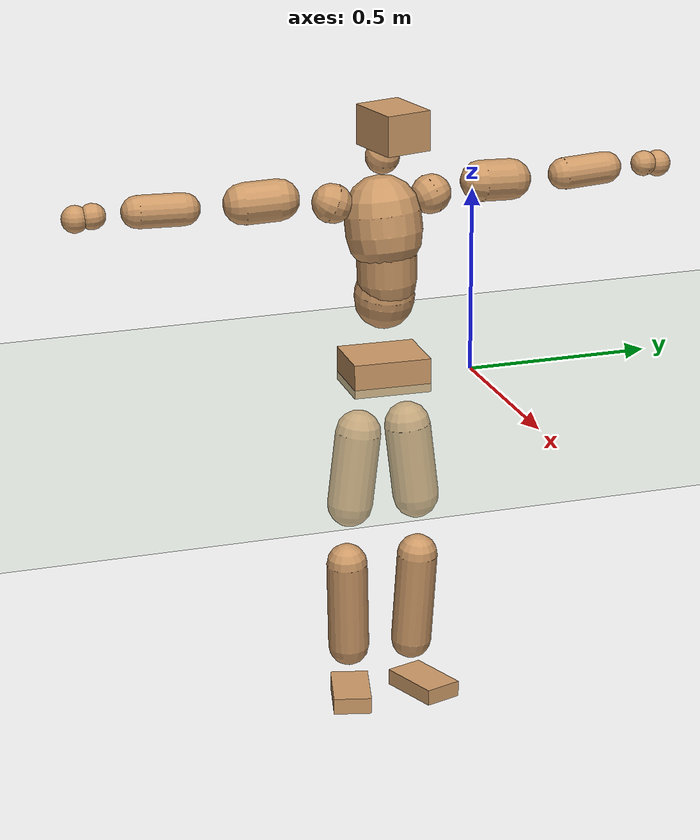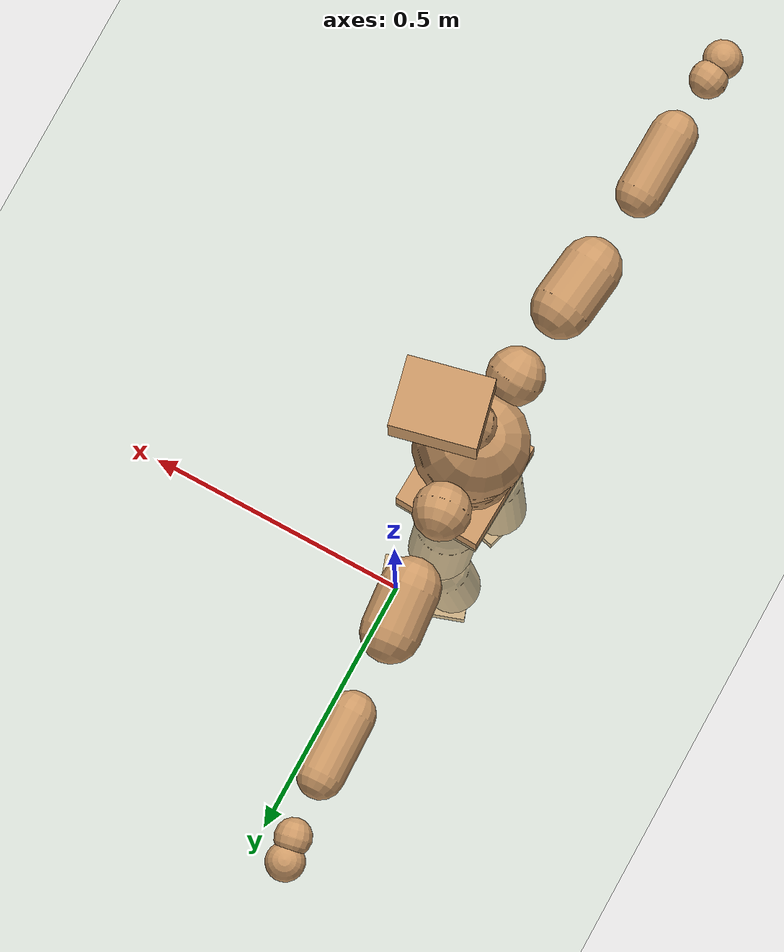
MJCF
<mujoco model="humanoid">
  <compiler coordinate="local" angle="radian"/>
  <default>
    <joint damping="0.0" armature="0.01" stiffness="0.0" limited="true"/>
    <geom conaffinity="1" condim="3" contype="7" margin="0.001" rgba="0.8 0.6 .4 1"/>
  </default>
  <asset>
    <texture type="skybox" builtin="gradient" rgb1=".4 .5 .6" rgb2="0 0 0" width="100" height="100"/>
    <texture builtin="flat" height="1278" mark="cross" markrgb="1 1 1" name="texgeom" random="0.01" rgb1="0.8 0.6 0.4" rgb2="0.8 0.6 0.4" type="cube" width="127"/>
    <texture builtin="checker" height="100" name="texplane" rgb1="0 0 0" rgb2="0.8 0.8 0.8" type="2d" width="100"/>
    <material name="MatPlane" reflectance="0.5" shininess="1" specular="1" texrepeat="60 60" texture="texplane"/>
    <material name="geom" texture="texgeom" texuniform="true"/>
  </asset>
  <worldbody>
    <light cutoff="100" diffuse="1 1 1" dir="-0 0 -1.3" directional="true" exponent="1" pos="0 0 1.3" specular=".1 .1 .1"/>
    <geom conaffinity="1" condim="3" name="floor" pos="0 0 0" rgba="0.8 0.9 0.8 1" size="100 100 .2" type="plane" material="MatPlane"/>
    <body name="Pelvis" pos="-0.0022 -0.2408 0.0286">
      <freejoint name="Pelvis"/>
      <geom type="box" contype="1" conaffinity="1" density="5359.374745" pos="-0.0116 0.0005 -0.0081" size="0.085 0.105 0.0458" quat="0.9998 0.0000 0.0000 -0.0195" name="Pelvis"/>
      <body name="L_Hip" pos="-0.0177 0.0586 -0.0823">
        <joint name="L_Hip_x" type="hinge" pos="0 0 0" axis="1 0 0" stiffness="1600" damping="160" armature="0.02" range="-180.0000 180.0000"/>
        <joint name="L_Hip_y" type="hinge" pos="0 0 0" axis="0 1 0" stiffness="1600" damping="160" armature="0.02" range="-180.0000 180.0000"/>
        <joint name="L_Hip_z" type="hinge" pos="0 0 0" axis="0 0 1" stiffness="1600" damping="160" armature="0.02" range="-180.0000 180.0000"/>
        <geom type="capsule" contype="1" conaffinity="1" density="2040.816327" size="0.062" fromto="0.0019 0.0103 -0.0915 0.0061 0.0332 -0.2950" name="L_Hip"/>
        <body name="L_Knee" pos="0.008 0.0435 -0.3865">
          <joint name="L_Knee_x" type="hinge" pos="0 0 0" axis="1 0 0" stiffness="1600" damping="160" armature="0.02" range="-180.0000 180.0000"/>
          <joint name="L_Knee_y" type="hinge" pos="0 0 0" axis="0 1 0" stiffness="1600" damping="160" armature="0.02" range="-180.0000 180.0000"/>
          <joint name="L_Knee_z" type="hinge" pos="0 0 0" axis="0 0 1" stiffness="1600" damping="160" armature="0.02" range="-180.0000 180.0000"/>
          <geom type="capsule" contype="1" conaffinity="1" density="1234.567901" size="0.0552" fromto="-0.0074 -0.0029 -0.0848 -0.0300 -0.0119 -0.3421" name="L_Knee"/>
          <body name="L_Ankle" pos="-0.0374 -0.0148 -0.4269">
            <joint name="L_Ankle_x" type="hinge" pos="0 0 0" axis="1 0 0" stiffness="1600" damping="160" armature="0.02" range="-180.0000 180.0000"/>
            <joint name="L_Ankle_y" type="hinge" pos="0 0 0" axis="0 1 0" stiffness="1600" damping="160" armature="0.02" range="-180.0000 180.0000"/>
            <joint name="L_Ankle_z" type="hinge" pos="0 0 0" axis="0 0 1" stiffness="1600" damping="160" armature="0.02" range="-180.0000 180.0000"/>
            <geom type="box" contype="1" conaffinity="1" density="1000.000042" pos="0.0610 0.0205 -0.0301" size="0.0887 0.052 0.0217" quat="0.9869 0.0000 0.0000 0.1615" name="L_Ankle"/>
            <body name="L_Toe" pos="0.122 0.0411 -0.0603">
              <joint name="L_Toe_x" type="hinge" pos="0 0 0" axis="1 0 0" stiffness="1000" damping="100" armature="0.02" range="-180.0000 180.0000"/>
              <joint name="L_Toe_y" type="hinge" pos="0 0 0" axis="0 1 0" stiffness="1000" damping="100" armature="0.02" range="-180.0000 180.0000"/>
              <joint name="L_Toe_z" type="hinge" pos="0 0 0" axis="0 0 1" stiffness="1000" damping="100" armature="0.02" range="-180.0000 180.0000"/>
              <geom type="box" contype="1" conaffinity="1" density="8211749.086171" pos="0.0000 0.0000 0.0293" size="0.0011 0.0025 0.001" quat="0.9861 0.0000 0.0000 0.1663" name="L_Toe"/>
            </body>
          </body>
        </body>
      </body>
      <body name="R_Hip" pos="-0.0135 -0.0603 -0.0905">
        <joint name="R_Hip_x" type="hinge" pos="0 0 0" axis="1 0 0" stiffness="1600" damping="160" armature="0.02" range="-180.0000 180.0000"/>
        <joint name="R_Hip_y" type="hinge" pos="0 0 0" axis="0 1 0" stiffness="1600" damping="160" armature="0.02" range="-180.0000 180.0000"/>
        <joint name="R_Hip_z" type="hinge" pos="0 0 0" axis="0 0 1" stiffness="1600" damping="160" armature="0.02" range="-180.0000 180.0000"/>
        <geom type="capsule" contype="1" conaffinity="1" density="2040.816327" size="0.0615" fromto="-0.0011 -0.0102 -0.0909 -0.0037 -0.0330 -0.2928" name="R_Hip"/>
        <body name="R_Knee" pos="-0.0048 -0.0433 -0.3837">
          <joint name="R_Knee_x" type="hinge" pos="0 0 0" axis="1 0 0" stiffness="1600" damping="160" armature="0.02" range="-180.0000 180.0000"/>
          <joint name="R_Knee_y" type="hinge" pos="0 0 0" axis="0 1 0" stiffness="1600" damping="160" armature="0.02" range="-180.0000 180.0000"/>
          <joint name="R_Knee_z" type="hinge" pos="0 0 0" axis="0 0 1" stiffness="1600" damping="160" armature="0.02" range="-180.0000 180.0000"/>
          <geom type="capsule" contype="1" conaffinity="1" density="1234.567901" size="0.0554" fromto="-0.0070 0.0039 -0.0850 -0.0276 0.0152 -0.3351" name="R_Knee"/>
          <body name="R_Ankle" pos="-0.0346 0.0191 -0.42">
            <joint name="R_Ankle_x" type="hinge" pos="0 0 0" axis="1 0 0" stiffness="1600" damping="160" armature="0.02" range="-180.0000 180.0000"/>
            <joint name="R_Ankle_y" type="hinge" pos="0 0 0" axis="0 1 0" stiffness="1600" damping="160" armature="0.02" range="-180.0000 180.0000"/>
            <joint name="R_Ankle_z" type="hinge" pos="0 0 0" axis="0 0 1" stiffness="1600" damping="160" armature="0.02" range="-180.0000 180.0000"/>
            <geom type="box" contype="1" conaffinity="1" density="1000.000005" pos="0.0652 -0.0174 -0.0311" size="0.0908 0.0511 0.022" quat="0.9915 0.0000 0.0000 -0.1302" name="R_Ankle"/>
            <body name="R_Toe" pos="0.1303 -0.0348 -0.0621">
              <joint name="R_Toe_x" type="hinge" pos="0 0 0" axis="1 0 0" stiffness="1000" damping="100" armature="0.02" range="-180.0000 180.0000"/>
              <joint name="R_Toe_y" type="hinge" pos="0 0 0" axis="0 1 0" stiffness="1000" damping="100" armature="0.02" range="-180.0000 180.0000"/>
              <joint name="R_Toe_z" type="hinge" pos="0 0 0" axis="0 0 1" stiffness="1000" damping="100" armature="0.02" range="-180.0000 180.0000"/>
              <geom type="box" contype="1" conaffinity="1" density="8226181.742526" pos="0.0000 0.0000 0.0309" size="0.0011 0.0025 0.0011" quat="0.9926 0.0000 0.0000 -0.1213" name="R_Toe"/>
            </body>
          </body>
        </body>
      </body>
      <body name="Torso" pos="-0.0384 0.0044 0.1244">
        <joint name="Torso_x" type="hinge" pos="0 0 0" axis="1 0 0" stiffness="2000" damping="200" armature="0.02" range="-180.0000 180.0000"/>
        <joint name="Torso_y" type="hinge" pos="0 0 0" axis="0 1 0" stiffness="2000" damping="200" armature="0.02" range="-180.0000 180.0000"/>
        <joint name="Torso_z" type="hinge" pos="0 0 0" axis="0 0 1" stiffness="2000" damping="200" armature="0.02" range="-180.0000 180.0000"/>
        <geom type="capsule" contype="1" conaffinity="1" density="2040.816327" size="0.0804" fromto="0.0153 0.0026 0.0788 0.0115 0.0019 0.0591" name="Torso"/>
        <body name="Spine" pos="0.0268 0.0045 0.138">
          <joint name="Spine_x" type="hinge" pos="0 0 0" axis="1 0 0" stiffness="2000" damping="200" armature="0.02" range="-180.0000 180.0000"/>
          <joint name="Spine_y" type="hinge" pos="0 0 0" axis="0 1 0" stiffness="2000" damping="200" armature="0.02" range="-180.0000 180.0000"/>
          <joint name="Spine_z" type="hinge" pos="0 0 0" axis="0 0 1" stiffness="2000" damping="200" armature="0.02" range="-180.0000 180.0000"/>
          <geom type="capsule" contype="1" conaffinity="1" density="2040.816327" size="0.0794" fromto="0.0040 -0.0032 0.0792 -0.0012 0.0009 -0.0232" name="Spine"/>
          <body name="Chest" pos="0.0029 -0.0023 0.056">
            <joint name="Chest_x" type="hinge" pos="0 0 0" axis="1 0 0" stiffness="2000" damping="200" armature="0.02" range="-180.0000 180.0000"/>
            <joint name="Chest_y" type="hinge" pos="0 0 0" axis="0 1 0" stiffness="2000" damping="200" armature="0.02" range="-180.0000 180.0000"/>
            <joint name="Chest_z" type="hinge" pos="0 0 0" axis="0 0 1" stiffness="2000" damping="200" armature="0.02" range="-180.0000 180.0000"/>
            <geom type="capsule" contype="1" conaffinity="1" density="2040.816327" size="0.102" fromto="-0.0174 -0.0056 0.1004 -0.0079 -0.0026 0.0457" name="Chest"/>
            <body name="Neck" pos="-0.0335 -0.0134 0.2116">
              <joint name="Neck_x" type="hinge" pos="0 0 0" axis="1 0 0" stiffness="1000" damping="100" armature="0.02" range="-180.0000 180.0000"/>
              <joint name="Neck_y" type="hinge" pos="0 0 0" axis="0 1 0" stiffness="1000" damping="100" armature="0.02" range="-180.0000 180.0000"/>
              <joint name="Neck_z" type="hinge" pos="0 0 0" axis="0 0 1" stiffness="1000" damping="100" armature="0.02" range="-180.0000 180.0000"/>
              <geom type="capsule" contype="1" conaffinity="1" density="1000" size="0.0455" fromto="0.0247 0.0050 0.0436 0.0257 0.0052 0.0453" name="Neck"/>
              <body name="Head" pos="0.0504 0.0101 0.0889">
                <joint name="Head_x" type="hinge" pos="0 0 0" axis="1 0 0" stiffness="1000" damping="100" armature="0.02" range="-180.0000 180.0000"/>
                <joint name="Head_y" type="hinge" pos="0 0 0" axis="0 1 0" stiffness="1000" damping="100" armature="0.02" range="-180.0000 180.0000"/>
                <joint name="Head_z" type="hinge" pos="0 0 0" axis="0 0 1" stiffness="1000" damping="100" armature="0.02" range="-180.0000 180.0000"/>
                <geom type="box" contype="1" conaffinity="1" density="2249.999929" pos="0.0262 0.0061 0.0455" size="0.0789 0.0633 0.0536" quat="0.9936 0.0000 0.0000 0.1133" name="Head"/>
              </body>
            </body>
            <body name="L_Thorax" pos="-0.0189 0.0717 0.114">
              <joint name="L_Thorax_x" type="hinge" pos="0 0 0" axis="1 0 0" stiffness="1000" damping="100" armature="0.02" range="-180.0000 180.0000"/>
              <joint name="L_Thorax_y" type="hinge" pos="0 0 0" axis="0 1 0" stiffness="1000" damping="100" armature="0.02" range="-180.0000 180.0000"/>
              <joint name="L_Thorax_z" type="hinge" pos="0 0 0" axis="0 0 1" stiffness="1000" damping="100" armature="0.02" range="-180.0000 180.0000"/>
              <geom type="capsule" contype="1" conaffinity="1" density="1000" size="0.053" fromto="-0.0094 0.0605 0.0223 -0.0097 0.0624 0.0229" name="L_Thorax"/>
              <body name="L_Shoulder" pos="-0.019 0.1229 0.0452">
                <joint name="L_Shoulder_x" type="hinge" pos="0 0 0" axis="1 0 0" stiffness="1000" damping="100" armature="0.02" range="-720.0000 720.0000"/>
                <joint name="L_Shoulder_y" type="hinge" pos="0 0 0" axis="0 1 0" stiffness="1000" damping="100" armature="0.02" range="-720.0000 720.0000"/>
                <joint name="L_Shoulder_z" type="hinge" pos="0 0 0" axis="0 0 1" stiffness="1000" damping="100" armature="0.02" range="-720.0000 720.0000"/>
                <geom type="capsule" contype="1" conaffinity="1" density="1000" size="0.0553" fromto="-0.0076 0.0848 -0.0052 -0.0153 0.1706 -0.0105" name="L_Shoulder"/>
                <body name="L_Elbow" pos="-0.0229 0.2553 -0.0156">
                  <joint name="L_Elbow_x" type="hinge" pos="0 0 0" axis="1 0 0" stiffness="1000" damping="100" armature="0.02" range="-720.0000 720.0000"/>
                  <joint name="L_Elbow_y" type="hinge" pos="0 0 0" axis="0 1 0" stiffness="1000" damping="100" armature="0.02" range="-720.0000 720.0000"/>
                  <joint name="L_Elbow_z" type="hinge" pos="0 0 0" axis="0 0 1" stiffness="1000" damping="100" armature="0.02" range="-720.0000 720.0000"/>
                  <geom type="capsule" contype="1" conaffinity="1" density="1000" size="0.0427" fromto="-0.0020 0.0726 0.0035 -0.0054 0.1931 0.0092" name="L_Elbow"/>
                  <body name="L_Wrist" pos="-0.0074 0.2657 0.0127">
                    <joint name="L_Wrist_x" type="hinge" pos="0 0 0" axis="1 0 0" stiffness="600" damping="60" armature="0.02" range="-180.0000 180.0000"/>
                    <joint name="L_Wrist_y" type="hinge" pos="0 0 0" axis="0 1 0" stiffness="600" damping="60" armature="0.02" range="-180.0000 180.0000"/>
                    <joint name="L_Wrist_z" type="hinge" pos="0 0 0" axis="0 0 1" stiffness="600" damping="60" armature="0.02" range="-180.0000 180.0000"/>
                    <geom type="capsule" contype="1" conaffinity="1" density="1000" size="0.0342" fromto="-0.0076 0.0424 -0.0052 -0.0080 0.0443 -0.0054" name="L_Wrist"/>
                    <body name="L_Hand" pos="-0.0156 0.0867 -0.0106">
                      <joint name="L_Hand_x" type="hinge" pos="0 0 0" axis="1 0 0" stiffness="600" damping="60" armature="0.02" range="-180.0000 180.0000"/>
                      <joint name="L_Hand_y" type="hinge" pos="0 0 0" axis="0 1 0" stiffness="600" damping="60" armature="0.02" range="-180.0000 180.0000"/>
                      <joint name="L_Hand_z" type="hinge" pos="0 0 0" axis="0 0 1" stiffness="600" damping="60" armature="0.02" range="-180.0000 180.0000"/>
                      <geom type="sphere" contype="1" conaffinity="1" density="1000" size="0.0356" pos="0.0000 0.0000 0.0000" name="L_Hand"/>
                    </body>
                  </body>
                </body>
              </body>
            </body>
            <body name="R_Thorax" pos="-0.0237 -0.083 0.1125">
              <joint name="R_Thorax_x" type="hinge" pos="0 0 0" axis="1 0 0" stiffness="1000" damping="100" armature="0.02" range="-180.0000 180.0000"/>
              <joint name="R_Thorax_y" type="hinge" pos="0 0 0" axis="0 1 0" stiffness="1000" damping="100" armature="0.02" range="-180.0000 180.0000"/>
              <joint name="R_Thorax_z" type="hinge" pos="0 0 0" axis="0 0 1" stiffness="1000" damping="100" armature="0.02" range="-180.0000 180.0000"/>
              <geom type="capsule" contype="1" conaffinity="1" density="1000" size="0.0531" fromto="-0.0042 -0.0557 0.0230 -0.0043 -0.0575 0.0238" name="R_Thorax"/>
              <body name="R_Shoulder" pos="-0.0085 -0.1132 0.0469">
                <joint name="R_Shoulder_x" type="hinge" pos="0 0 0" axis="1 0 0" stiffness="1000" damping="100" armature="0.02" range="-720.0000 720.0000"/>
                <joint name="R_Shoulder_y" type="hinge" pos="0 0 0" axis="0 1 0" stiffness="1000" damping="100" armature="0.02" range="-720.0000 720.0000"/>
                <joint name="R_Shoulder_z" type="hinge" pos="0 0 0" axis="0 0 1" stiffness="1000" damping="100" armature="0.02" range="-720.0000 720.0000"/>
                <geom type="capsule" contype="1" conaffinity="1" density="1000" size="0.056" fromto="-0.0103 -0.0853 -0.0047 -0.0210 -0.1749 -0.0097" name="R_Shoulder"/>
                <body name="R_Elbow" pos="-0.0313 -0.2601 -0.0144">
                  <joint name="R_Elbow_x" type="hinge" pos="0 0 0" axis="1 0 0" stiffness="1000" damping="100" armature="0.02" range="-720.0000 720.0000"/>
                  <joint name="R_Elbow_y" type="hinge" pos="0 0 0" axis="0 1 0" stiffness="1000" damping="100" armature="0.02" range="-720.0000 720.0000"/>
                  <joint name="R_Elbow_z" type="hinge" pos="0 0 0" axis="0 0 1" stiffness="1000" damping="100" armature="0.02" range="-720.0000 720.0000"/>
                  <geom type="capsule" contype="1" conaffinity="1" density="1000" size="0.0434" fromto="-0.0016 -0.0733 0.0019 -0.0044 -0.1958 0.0049" name="R_Elbow"/>
                  <body name="R_Wrist" pos="-0.006 -0.2691 0.0068">
                    <joint name="R_Wrist_x" type="hinge" pos="0 0 0" axis="1 0 0" stiffness="600" damping="60" armature="0.02" range="-180.0000 180.0000"/>
                    <joint name="R_Wrist_y" type="hinge" pos="0 0 0" axis="0 1 0" stiffness="600" damping="60" armature="0.02" range="-180.0000 180.0000"/>
                    <joint name="R_Wrist_z" type="hinge" pos="0 0 0" axis="0 0 1" stiffness="600" damping="60" armature="0.02" range="-180.0000 180.0000"/>
                    <geom type="capsule" contype="1" conaffinity="1" density="1000" size="0.0348" fromto="-0.0049 -0.0434 -0.0042 -0.0052 -0.0454 -0.0044" name="R_Wrist"/>
                    <body name="R_Hand" pos="-0.0101 -0.0888 -0.0087">
                      <joint name="R_Hand_x" type="hinge" pos="0 0 0" axis="1 0 0" stiffness="600" damping="60" armature="0.02" range="-180.0000 180.0000"/>
                      <joint name="R_Hand_y" type="hinge" pos="0 0 0" axis="0 1 0" stiffness="600" damping="60" armature="0.02" range="-180.0000 180.0000"/>
                      <joint name="R_Hand_z" type="hinge" pos="0 0 0" axis="0 0 1" stiffness="600" damping="60" armature="0.02" range="-180.0000 180.0000"/>
                      <geom type="sphere" contype="1" conaffinity="1" density="1000" size="0.0361" pos="0.0000 0.0000 0.0000" name="R_Hand"/>
                    </body>
                  </body>
                </body>
              </body>
            </body>
          </body>
        </body>
      </body>
    </body>
  </worldbody>
  <actuator>
    <motor name="L_Hip_x" joint="L_Hip_x" gear="500"/>
    <motor name="L_Hip_y" joint="L_Hip_y" gear="500"/>
    <motor name="L_Hip_z" joint="L_Hip_z" gear="500"/>
    <motor name="L_Knee_x" joint="L_Knee_x" gear="500"/>
    <motor name="L_Knee_y" joint="L_Knee_y" gear="500"/>
    <motor name="L_Knee_z" joint="L_Knee_z" gear="500"/>
    <motor name="L_Ankle_x" joint="L_Ankle_x" gear="500"/>
    <motor name="L_Ankle_y" joint="L_Ankle_y" gear="500"/>
    <motor name="L_Ankle_z" joint="L_Ankle_z" gear="500"/>
    <motor name="L_Toe_x" joint="L_Toe_x" gear="500"/>
    <motor name="L_Toe_y" joint="L_Toe_y" gear="500"/>
    <motor name="L_Toe_z" joint="L_Toe_z" gear="500"/>
    <motor name="R_Hip_x" joint="R_Hip_x" gear="500"/>
    <motor name="R_Hip_y" joint="R_Hip_y" gear="500"/>
    <motor name="R_Hip_z" joint="R_Hip_z" gear="500"/>
    <motor name="R_Knee_x" joint="R_Knee_x" gear="500"/>
    <motor name="R_Knee_y" joint="R_Knee_y" gear="500"/>
    <motor name="R_Knee_z" joint="R_Knee_z" gear="500"/>
    <motor name="R_Ankle_x" joint="R_Ankle_x" gear="500"/>
    <motor name="R_Ankle_y" joint="R_Ankle_y" gear="500"/>
    <motor name="R_Ankle_z" joint="R_Ankle_z" gear="500"/>
    <motor name="R_Toe_x" joint="R_Toe_x" gear="500"/>
    <motor name="R_Toe_y" joint="R_Toe_y" gear="500"/>
    <motor name="R_Toe_z" joint="R_Toe_z" gear="500"/>
    <motor name="Torso_x" joint="Torso_x" gear="500"/>
    <motor name="Torso_y" joint="Torso_y" gear="500"/>
    <motor name="Torso_z" joint="Torso_z" gear="500"/>
    <motor name="Spine_x" joint="Spine_x" gear="500"/>
    <motor name="Spine_y" joint="Spine_y" gear="500"/>
    <motor name="Spine_z" joint="Spine_z" gear="500"/>
    <motor name="Chest_x" joint="Chest_x" gear="500"/>
    <motor name="Chest_y" joint="Chest_y" gear="500"/>
    <motor name="Chest_z" joint="Chest_z" gear="500"/>
    <motor name="Neck_x" joint="Neck_x" gear="500"/>
    <motor name="Neck_y" joint="Neck_y" gear="500"/>
    <motor name="Neck_z" joint="Neck_z" gear="500"/>
    <motor name="Head_x" joint="Head_x" gear="500"/>
    <motor name="Head_y" joint="Head_y" gear="500"/>
    <motor name="Head_z" joint="Head_z" gear="500"/>
    <motor name="L_Thorax_x" joint="L_Thorax_x" gear="500"/>
    <motor name="L_Thorax_y" joint="L_Thorax_y" gear="500"/>
    <motor name="L_Thorax_z" joint="L_Thorax_z" gear="500"/>
    <motor name="L_Shoulder_x" joint="L_Shoulder_x" gear="500"/>
    <motor name="L_Shoulder_y" joint="L_Shoulder_y" gear="500"/>
    <motor name="L_Shoulder_z" joint="L_Shoulder_z" gear="500"/>
    <motor name="L_Elbow_x" joint="L_Elbow_x" gear="500"/>
    <motor name="L_Elbow_y" joint="L_Elbow_y" gear="500"/>
    <motor name="L_Elbow_z" joint="L_Elbow_z" gear="500"/>
    <motor name="L_Wrist_x" joint="L_Wrist_x" gear="500"/>
    <motor name="L_Wrist_y" joint="L_Wrist_y" gear="500"/>
    <motor name="L_Wrist_z" joint="L_Wrist_z" gear="500"/>
    <motor name="L_Hand_x" joint="L_Hand_x" gear="500"/>
    <motor name="L_Hand_y" joint="L_Hand_y" gear="500"/>
    <motor name="L_Hand_z" joint="L_Hand_z" gear="500"/>
    <motor name="R_Thorax_x" joint="R_Thorax_x" gear="500"/>
    <motor name="R_Thorax_y" joint="R_Thorax_y" gear="500"/>
    <motor name="R_Thorax_z" joint="R_Thorax_z" gear="500"/>
    <motor name="R_Shoulder_x" joint="R_Shoulder_x" gear="500"/>
    <motor name="R_Shoulder_y" joint="R_Shoulder_y" gear="500"/>
    <motor name="R_Shoulder_z" joint="R_Shoulder_z" gear="500"/>
    <motor name="R_Elbow_x" joint="R_Elbow_x" gear="500"/>
    <motor name="R_Elbow_y" joint="R_Elbow_y" gear="500"/>
    <motor name="R_Elbow_z" joint="R_Elbow_z" gear="500"/>
    <motor name="R_Wrist_x" joint="R_Wrist_x" gear="500"/>
    <motor name="R_Wrist_y" joint="R_Wrist_y" gear="500"/>
    <motor name="R_Wrist_z" joint="R_Wrist_z" gear="500"/>
    <motor name="R_Hand_x" joint="R_Hand_x" gear="500"/>
    <motor name="R_Hand_y" joint="R_Hand_y" gear="500"/>
    <motor name="R_Hand_z" joint="R_Hand_z" gear="500"/>
  </actuator>
  <contact>
    <exclude body1="Torso" body2="Chest"/>
    <exclude body1="Head" body2="Chest"/>
    <exclude body1="R_Knee" body2="R_Toe"/>
    <exclude body1="R_Knee" body2="L_Ankle"/>
    <exclude body1="R_Knee" body2="L_Toe"/>
    <exclude body1="L_Knee" body2="L_Toe"/>
    <exclude body1="L_Knee" body2="R_Ankle"/>
    <exclude body1="L_Knee" body2="R_Toe"/>
    <exclude body1="L_Shoulder" body2="Chest"/>
    <exclude body1="R_Shoulder" body2="Chest"/>
  </contact>
  <sensor/>
  <size njmax="700" nconmax="700"/>
</mujoco>
